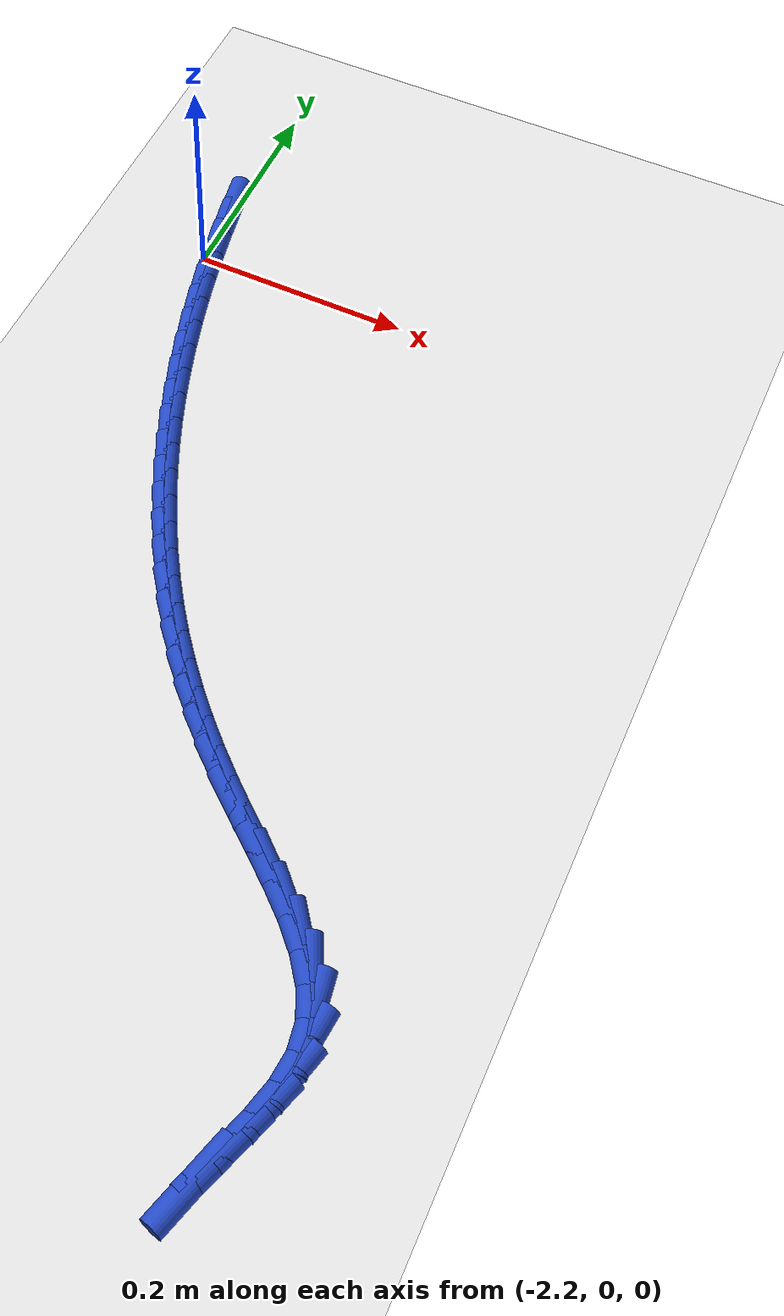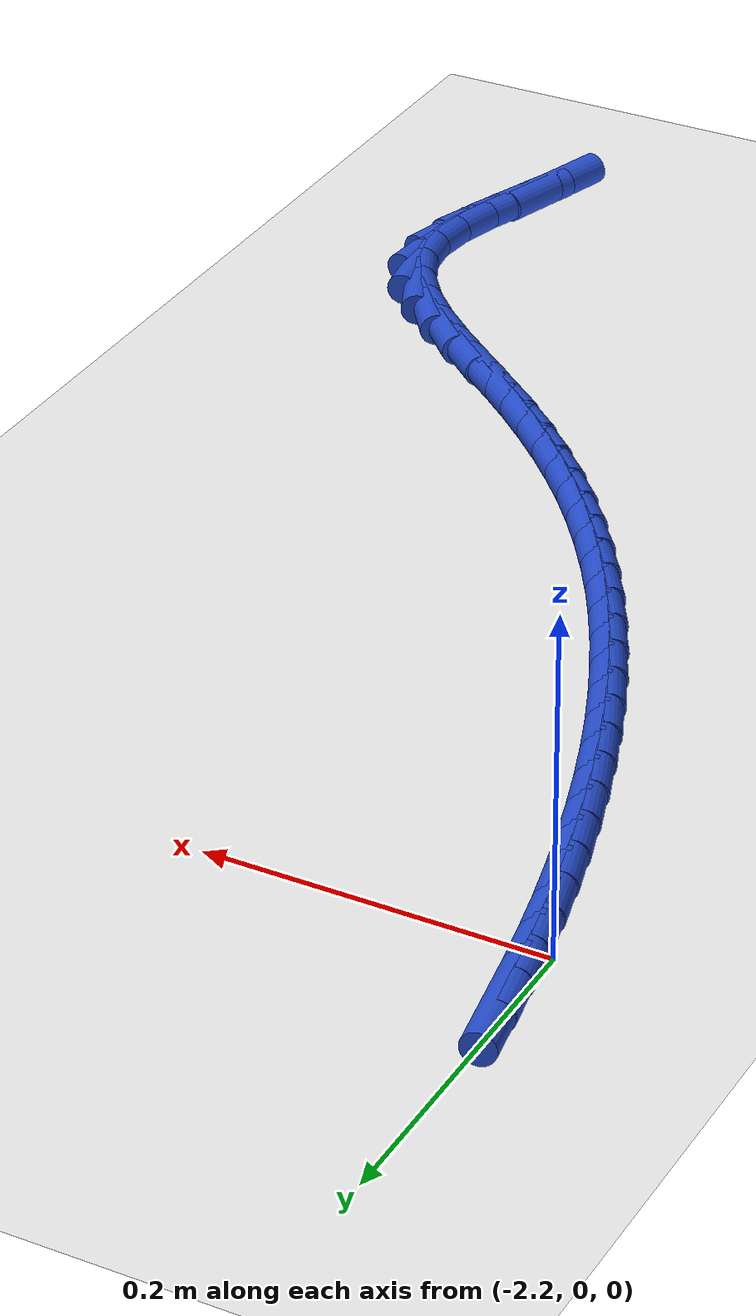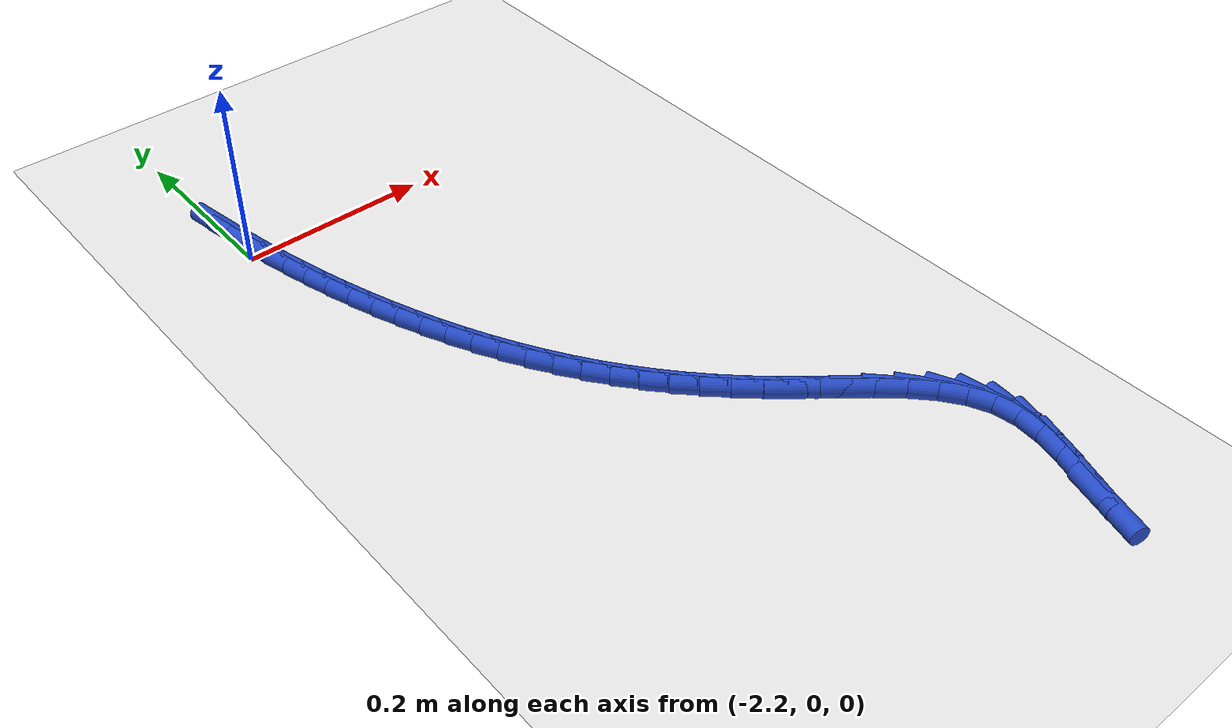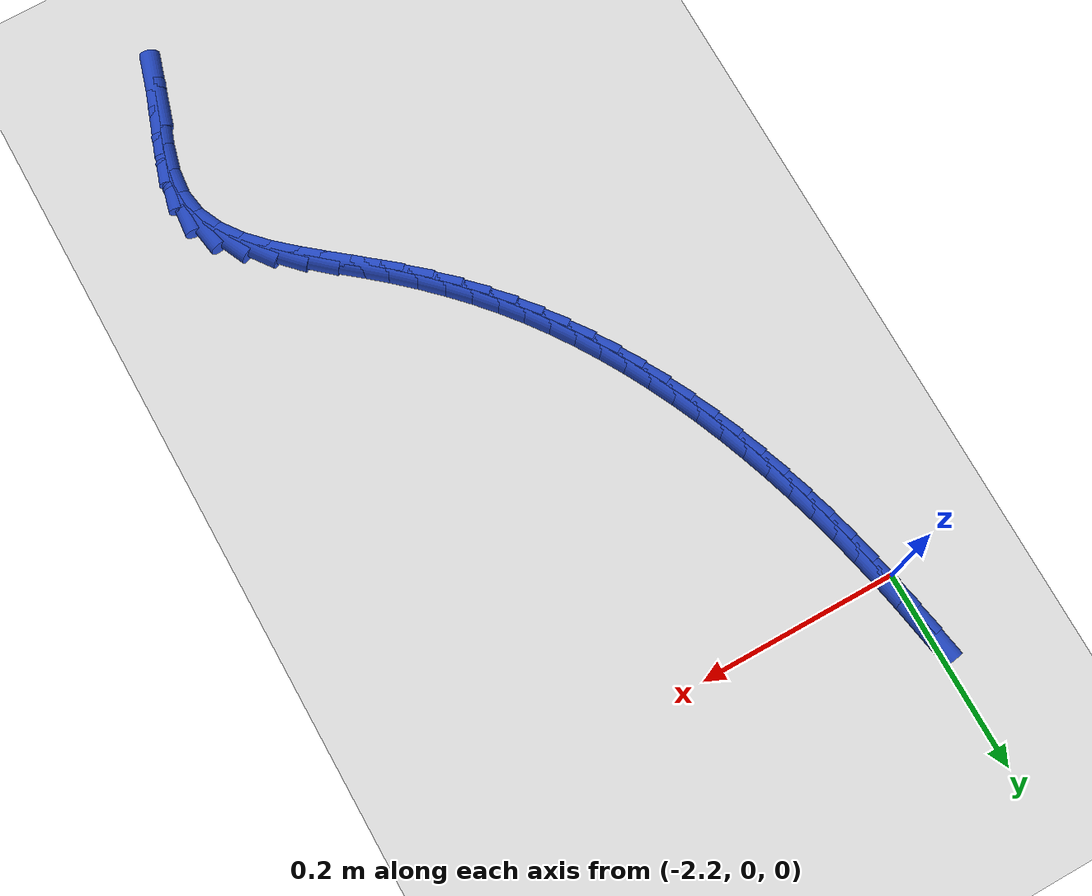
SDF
<sdf version="1.6">
 <world name="default">
  <model name="ground_plane">
   <static>1</static>
   <link name="link">
    <collision name="collision">
     <geometry><plane><normal>0 0 1</normal><size>100 100</size></plane></geometry>
     <surface><friction><ode><mu>100</mu><mu2>50</mu2></ode></friction></surface>
    </collision>
    <visual name="visual">
     <cast_shadows>0</cast_shadows>
     <geometry><plane><normal>0 0 1</normal><size>100 100</size></plane></geometry>
     <material>
      <script><uri>file://media/materials/scripts/gazebo.material</uri><name>Gazebo/WhiteGlow</name></script>
     </material>
    </visual>
   </link>
  </model>
  <model name="line">
   <link name="link_143">
    <pose>-2.199853137628579 0.05507495607901687 0.01 0 1.57 -1.4007924693614189</pose>
    <collision name="collision">
     <geometry><cylinder><radius>0.01</radius><length>0.08</length></cylinder></geometry>
    </collision>
    <visual name="visual">
     <material>
      <script><name>Gazebo/Blue</name><uri>file://media/materials/scripts/gazebo.material</uri></script>
     </material>
     <geometry><cylinder><radius>0.01</radius><length>0.08</length></cylinder></geometry>
    </visual>
   </link>
   <link name="link_144">
    <pose>-2.1950797214668882 0.02726769694447006 0.01 0 1.57 -1.3802874173247879</pose>
    <collision name="collision">
     <geometry><cylinder><radius>0.01</radius><length>0.08</length></cylinder></geometry>
    </collision>
    <visual name="visual">
     <material>
      <script><name>Gazebo/Blue</name><uri>file://media/materials/scripts/gazebo.material</uri></script>
     </material>
     <geometry><cylinder><radius>0.01</radius><length>0.08</length></cylinder></geometry>
    </visual>
   </link>
   <link name="link_145">
    <pose>-2.189726440282288 -0.000491427782236493 0.01 0 1.57 -1.3590288569814586</pose>
    <collision name="collision">
     <geometry><cylinder><radius>0.01</radius><length>0.08</length></cylinder></geometry>
    </collision>
    <visual name="visual">
     <material>
      <script><name>Gazebo/Blue</name><uri>file://media/materials/scripts/gazebo.material</uri></script>
     </material>
     <geometry><cylinder><radius>0.01</radius><length>0.08</length></cylinder></geometry>
    </visual>
   </link>
   <link name="link_146">
    <pose>-2.1837787150331778 -0.028156436044762458 0.01 0 1.57 -1.336943181950186</pose>
    <collision name="collision">
     <geometry><cylinder><radius>0.01</radius><length>0.08</length></cylinder></geometry>
    </collision>
    <visual name="visual">
     <material>
      <script><name>Gazebo/Blue</name><uri>file://media/materials/scripts/gazebo.material</uri></script>
     </material>
     <geometry><cylinder><radius>0.01</radius><length>0.08</length></cylinder></geometry>
    </visual>
   </link>
   <link name="link_147">
    <pose>-2.1772219666779606 -0.05568134578676488 0.01 0 1.57 -1.3139542743856087</pose>
    <collision name="collision">
     <geometry><cylinder><radius>0.01</radius><length>0.08</length></cylinder></geometry>
    </collision>
    <visual name="visual">
     <material>
      <script><name>Gazebo/Blue</name><uri>file://media/materials/scripts/gazebo.material</uri></script>
     </material>
     <geometry><cylinder><radius>0.01</radius><length>0.08</length></cylinder></geometry>
    </visual>
   </link>
   <link name="link_148">
    <pose>-2.170041616175036 -0.08302017495190346 0.01 0 1.57 -1.289983392089449</pose>
    <collision name="collision">
     <geometry><cylinder><radius>0.01</radius><length>0.08</length></cylinder></geometry>
    </collision>
    <visual name="visual">
     <material>
      <script><name>Gazebo/Blue</name><uri>file://media/materials/scripts/gazebo.material</uri></script>
     </material>
     <geometry><cylinder><radius>0.01</radius><length>0.08</length></cylinder></geometry>
    </visual>
   </link>
   <link name="link_149">
    <pose>-2.162223084482805 -0.11012694148383705 0.01 0 1.57 -1.2649491809635331</pose>
    <collision name="collision">
     <geometry><cylinder><radius>0.01</radius><length>0.08</length></cylinder></geometry>
    </collision>
    <visual name="visual">
     <material>
      <script><name>Gazebo/Blue</name><uri>file://media/materials/scripts/gazebo.material</uri></script>
     </material>
     <geometry><cylinder><radius>0.01</radius><length>0.08</length></cylinder></geometry>
    </visual>
   </link>
   <link name="link_150">
    <pose>-2.153751792559668 -0.13695566332622439 0.01 0 1.57 -1.2387678425022266</pose>
    <collision name="collision">
     <geometry><cylinder><radius>0.01</radius><length>0.08</length></cylinder></geometry>
    </collision>
    <visual name="visual">
     <material>
      <script><name>Gazebo/Blue</name><uri>file://media/materials/scripts/gazebo.material</uri></script>
     </material>
     <geometry><cylinder><radius>0.01</radius><length>0.08</length></cylinder></geometry>
    </visual>
   </link>
   <link name="link_151">
    <pose>-2.144613161364026 -0.16346035842272436 0.01 0 1.57 -1.2113534935754766</pose>
    <collision name="collision">
     <geometry><cylinder><radius>0.01</radius><length>0.08</length></cylinder></geometry>
    </collision>
    <visual name="visual">
     <material>
      <script><name>Gazebo/Blue</name><uri>file://media/materials/scripts/gazebo.material</uri></script>
     </material>
     <geometry><cylinder><radius>0.01</radius><length>0.08</length></cylinder></geometry>
    </visual>
   </link>
   <link name="link_152">
    <pose>-2.1347926118542797 -0.1895950447169958 0.01 0 1.57 -1.182618763596726</pose>
    <collision name="collision">
     <geometry><cylinder><radius>0.01</radius><length>0.08</length></cylinder></geometry>
    </collision>
    <visual name="visual">
     <material>
      <script><name>Gazebo/Blue</name><uri>file://media/materials/scripts/gazebo.material</uri></script>
     </material>
     <geometry><cylinder><radius>0.01</radius><length>0.08</length></cylinder></geometry>
    </visual>
   </link>
   <link name="link_153">
    <pose>-2.1242755649888285 -0.21531374015269733 0.01 0 1.57 -1.1524756817612833</pose>
    <collision name="collision">
     <geometry><cylinder><radius>0.01</radius><length>0.08</length></cylinder></geometry>
    </collision>
    <visual name="visual">
     <material>
      <script><name>Gazebo/Blue</name><uri>file://media/materials/scripts/gazebo.material</uri></script>
     </material>
     <geometry><cylinder><radius>0.01</radius><length>0.08</length></cylinder></geometry>
    </visual>
   </link>
   <link name="link_154">
    <pose>-2.113047441726076 -0.24057046267348803 0.01 0 1.57 -1.1208369134613423</pose>
    <collision name="collision">
     <geometry><cylinder><radius>0.01</radius><length>0.08</length></cylinder></geometry>
    </collision>
    <visual name="visual">
     <material>
      <script><name>Gazebo/Blue</name><uri>file://media/materials/scripts/gazebo.material</uri></script>
     </material>
     <geometry><cylinder><radius>0.01</radius><length>0.08</length></cylinder></geometry>
    </visual>
   </link>
   <link name="link_155">
    <pose>-2.10109366302442 -0.2653192302230273 0.01 0 1.57 -1.0876174088148458</pose>
    <collision name="collision">
     <geometry><cylinder><radius>0.01</radius><length>0.08</length></cylinder></geometry>
    </collision>
    <visual name="visual">
     <material>
      <script><name>Gazebo/Blue</name><uri>file://media/materials/scripts/gazebo.material</uri></script>
     </material>
     <geometry><cylinder><radius>0.01</radius><length>0.08</length></cylinder></geometry>
    </visual>
   </link>
   <link name="link_156">
    <pose>-2.088399649842263 -0.2895140607449724 0.01 0 1.57 -1.0527365254311976</pose>
    <collision name="collision">
     <geometry><cylinder><radius>0.01</radius><length>0.08</length></cylinder></geometry>
    </collision>
    <visual name="visual">
     <material>
      <script><name>Gazebo/Blue</name><uri>file://media/materials/scripts/gazebo.material</uri></script>
     </material>
     <geometry><cylinder><radius>0.01</radius><length>0.08</length></cylinder></geometry>
    </visual>
   </link>
   <link name="link_157">
    <pose>-2.074950823138006 -0.31310897218298306 0.01 0 1.57 -1.0161206793665334</pose>
    <collision name="collision">
     <geometry><cylinder><radius>0.01</radius><length>0.08</length></cylinder></geometry>
    </collision>
    <visual name="visual">
     <material>
      <script><name>Gazebo/Blue</name><uri>file://media/materials/scripts/gazebo.material</uri></script>
     </material>
     <geometry><cylinder><radius>0.01</radius><length>0.08</length></cylinder></geometry>
    </visual>
   </link>
   <link name="link_158">
    <pose>-2.0607326038700484 -0.33605798248071805 0.01 0 1.57 -0.9777065593225137</pose>
    <collision name="collision">
     <geometry><cylinder><radius>0.01</radius><length>0.08</length></cylinder></geometry>
    </collision>
    <visual name="visual">
     <material>
      <script><name>Gazebo/Blue</name><uri>file://media/materials/scripts/gazebo.material</uri></script>
     </material>
     <geometry><cylinder><radius>0.01</radius><length>0.08</length></cylinder></geometry>
    </visual>
   </link>
   <link name="link_159">
    <pose>-2.045730412996792 -0.3583151095818361 0.01 0 1.57 -0.9374449058216419</pose>
    <collision name="collision">
     <geometry><cylinder><radius>0.01</radius><length>0.08</length></cylinder></geometry>
    </collision>
    <visual name="visual">
     <material>
      <script><name>Gazebo/Blue</name><uri>file://media/materials/scripts/gazebo.material</uri></script>
     </material>
     <geometry><cylinder><radius>0.01</radius><length>0.08</length></cylinder></geometry>
    </visual>
   </link>
   <link name="link_160">
    <pose>-2.029929671476636 -0.37983437142999604 0.01 0 1.57 -0.8955098739589551</pose>
    <collision name="collision">
     <geometry><cylinder><radius>0.01</radius><length>0.08</length></cylinder></geometry>
    </collision>
    <visual name="visual">
     <material>
      <script><name>Gazebo/Blue</name><uri>file://media/materials/scripts/gazebo.material</uri></script>
     </material>
     <geometry><cylinder><radius>0.01</radius><length>0.08</length></cylinder></geometry>
    </visual>
   </link>
   <link name="link_161">
    <pose>-2.0133074983273613 -0.40058886804473476 0.01 0 1.57 -0.853474495472985</pose>
    <collision name="collision">
     <geometry><cylinder><radius>0.01</radius><length>0.08</length></cylinder></geometry>
    </collision>
    <visual name="visual">
     <material>
      <script><name>Gazebo/Blue</name><uri>file://media/materials/scripts/gazebo.material</uri></script>
     </material>
     <geometry><cylinder><radius>0.01</radius><length>0.08</length></cylinder></geometry>
    </visual>
   </link>
   <link name="link_162">
    <pose>-1.9957891794887475 -0.4206708381834303 0.01 0 1.57 -0.812677789795145</pose>
    <collision name="collision">
     <geometry><cylinder><radius>0.01</radius><length>0.08</length></cylinder></geometry>
    </collision>
    <visual name="visual">
     <material>
      <script><name>Gazebo/Blue</name><uri>file://media/materials/scripts/gazebo.material</uri></script>
     </material>
     <geometry><cylinder><radius>0.01</radius><length>0.08</length></cylinder></geometry>
    </visual>
   </link>
   <link name="link_163">
    <pose>-1.9772800342039667 -0.440218414212807 0.01 0 1.57 -0.7739579370648667</pose>
    <collision name="collision">
     <geometry><cylinder><radius>0.01</radius><length>0.08</length></cylinder></geometry>
    </collision>
    <visual name="visual">
     <material>
      <script><name>Gazebo/Blue</name><uri>file://media/materials/scripts/gazebo.material</uri></script>
     </material>
     <geometry><cylinder><radius>0.01</radius><length>0.08</length></cylinder></geometry>
    </visual>
   </link>
   <link name="link_164">
    <pose>-1.9576853396335596 -0.45936982522684966 0.01 0 1.57 -0.7380032438496333</pose>
    <collision name="collision">
     <geometry><cylinder><radius>0.01</radius><length>0.08</length></cylinder></geometry>
    </collision>
    <visual name="visual">
     <material>
      <script><name>Gazebo/Blue</name><uri>file://media/materials/scripts/gazebo.material</uri></script>
     </material>
     <geometry><cylinder><radius>0.01</radius><length>0.08</length></cylinder></geometry>
    </visual>
   </link>
   <link name="link_165">
    <pose>-1.9369103729380681 -0.47826330031954134 0.01 0 1.57 -0.705317604637999</pose>
    <collision name="collision">
     <geometry><cylinder><radius>0.01</radius><length>0.08</length></cylinder></geometry>
    </collision>
    <visual name="visual">
     <material>
      <script><name>Gazebo/Blue</name><uri>file://media/materials/scripts/gazebo.material</uri></script>
     </material>
     <geometry><cylinder><radius>0.01</radius><length>0.08</length></cylinder></geometry>
    </visual>
   </link>
   <link name="link_166">
    <pose>-1.9148604112780314 -0.4970370685848667 0.01 0 1.57 -0.6803809312921553</pose>
    <collision name="collision">
     <geometry><cylinder><radius>0.01</radius><length>0.08</length></cylinder></geometry>
    </collision>
    <visual name="visual">
     <material>
      <script><name>Gazebo/Blue</name><uri>file://media/materials/scripts/gazebo.material</uri></script>
     </material>
     <geometry><cylinder><radius>0.01</radius><length>0.08</length></cylinder></geometry>
    </visual>
   </link>
   <link name="link_167">
    <pose>-1.8916182292210986 -0.51584677138753 0.01 0 1.57 -0.6844338416094359</pose>
    <collision name="collision">
     <geometry><cylinder><radius>0.01</radius><length>0.08</length></cylinder></geometry>
    </collision>
    <visual name="visual">
     <material>
      <script><name>Gazebo/Blue</name><uri>file://media/materials/scripts/gazebo.material</uri></script>
     </material>
     <geometry><cylinder><radius>0.01</radius><length>0.08</length></cylinder></geometry>
    </visual>
   </link>
   <link name="link_168">
    <pose>-1.868218515066609 -0.534941431623088 0.01 0 1.57 -0.7246819676698703</pose>
    <collision name="collision">
     <geometry><cylinder><radius>0.01</radius><length>0.08</length></cylinder></geometry>
    </collision>
    <visual name="visual">
     <material>
      <script><name>Gazebo/Blue</name><uri>file://media/materials/scripts/gazebo.material</uri></script>
     </material>
     <geometry><cylinder><radius>0.01</radius><length>0.08</length></cylinder></geometry>
    </visual>
   </link>
   <link name="link_169">
    <pose>-1.846013714775218 -0.5546012438110236 0.01 0 1.57 -0.8065083458908703</pose>
    <collision name="collision">
     <geometry><cylinder><radius>0.01</radius><length>0.08</length></cylinder></geometry>
    </collision>
    <visual name="visual">
     <material>
      <script><name>Gazebo/Blue</name><uri>file://media/materials/scripts/gazebo.material</uri></script>
     </material>
     <geometry><cylinder><radius>0.01</radius><length>0.08</length></cylinder></geometry>
    </visual>
   </link>
   <link name="link_170">
    <pose>-1.8263564959188525 -0.5751064242106038 0.01 0 1.57 -0.9412292881385957</pose>
    <collision name="collision">
     <geometry><cylinder><radius>0.01</radius><length>0.08</length></cylinder></geometry>
    </collision>
    <visual name="visual">
     <material>
      <script><name>Gazebo/Blue</name><uri>file://media/materials/scripts/gazebo.material</uri></script>
     </material>
     <geometry><cylinder><radius>0.01</radius><length>0.08</length></cylinder></geometry>
    </visual>
   </link>
   <link name="link_171">
    <pose>-1.810599526069442 -0.5967371890810966 0.01 0 1.57 -1.142986319083286</pose>
    <collision name="collision">
     <geometry><cylinder><radius>0.01</radius><length>0.08</length></cylinder></geometry>
    </collision>
    <visual name="visual">
     <material>
      <script><name>Gazebo/Blue</name><uri>file://media/materials/scripts/gazebo.material</uri></script>
     </material>
     <geometry><cylinder><radius>0.01</radius><length>0.08</length></cylinder></geometry>
    </visual>
   </link>
   <link name="link_172">
    <pose>-1.8000954727989151 -0.6197737546817697 0.01 0 1.57 -1.4126517915308103</pose>
    <collision name="collision">
     <geometry><cylinder><radius>0.01</radius><length>0.08</length></cylinder></geometry>
    </collision>
    <visual name="visual">
     <material>
      <script><name>Gazebo/Blue</name><uri>file://media/materials/scripts/gazebo.material</uri></script>
     </material>
     <geometry><cylinder><radius>0.01</radius><length>0.08</length></cylinder></geometry>
    </visual>
   </link>
   <link name="link_173">
    <pose>-1.7961545737532487 -0.6444852666628329 0.01 0 1.57 1.477055585994448</pose>
    <collision name="collision">
     <geometry><cylinder><radius>0.01</radius><length>0.08</length></cylinder></geometry>
    </collision>
    <visual name="visual">
     <material>
      <script><name>Gazebo/Blue</name><uri>file://media/materials/scripts/gazebo.material</uri></script>
     </material>
     <geometry><cylinder><radius>0.01</radius><length>0.08</length></cylinder></geometry>
    </visual>
   </link>
   <link name="link_174">
    <pose>-1.7986247639705875 -0.6707593338197141 0.01 0 1.57 1.3217627900064084</pose>
    <collision name="collision">
     <geometry><cylinder><radius>0.01</radius><length>0.08</length></cylinder></geometry>
    </collision>
    <visual name="visual">
     <material>
      <script><name>Gazebo/Blue</name><uri>file://media/materials/scripts/gazebo.material</uri></script>
     </material>
     <geometry><cylinder><radius>0.01</radius><length>0.08</length></cylinder></geometry>
    </visual>
   </link>
   <link name="link_175">
    <pose>-1.8055560909296744 -0.6980144689064436 0.01 0 1.57 1.2450299920497736</pose>
    <collision name="collision">
     <geometry><cylinder><radius>0.01</radius><length>0.08</length></cylinder></geometry>
    </collision>
    <visual name="visual">
     <material>
      <script><name>Gazebo/Blue</name><uri>file://media/materials/scripts/gazebo.material</uri></script>
     </material>
     <geometry><cylinder><radius>0.01</radius><length>0.08</length></cylinder></geometry>
    </visual>
   </link>
   <link name="link_176">
    <pose>-1.8148881558673882 -0.7256403675830256 0.01 0 1.57 1.2312884287196415</pose>
    <collision name="collision">
     <geometry><cylinder><radius>0.01</radius><length>0.08</length></cylinder></geometry>
    </collision>
    <visual name="visual">
     <material>
      <script><name>Gazebo/Blue</name><uri>file://media/materials/scripts/gazebo.material</uri></script>
     </material>
     <geometry><cylinder><radius>0.01</radius><length>0.08</length></cylinder></geometry>
    </visual>
   </link>
   <link name="link_177">
    <pose>-1.8245605600206076 -0.7530267255094645 0.01 0 1.57 1.2796372012427395</pose>
    <collision name="collision">
     <geometry><cylinder><radius>0.01</radius><length>0.08</length></cylinder></geometry>
    </collision>
    <visual name="visual">
     <material>
      <script><name>Gazebo/Blue</name><uri>file://media/materials/scripts/gazebo.material</uri></script>
     </material>
     <geometry><cylinder><radius>0.01</radius><length>0.08</length></cylinder></geometry>
    </visual>
   </link>
  </model>
 </world>
</sdf>
